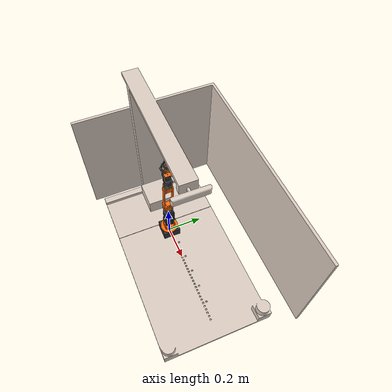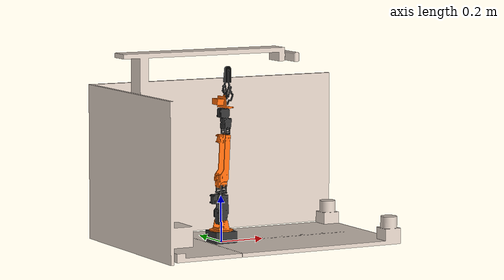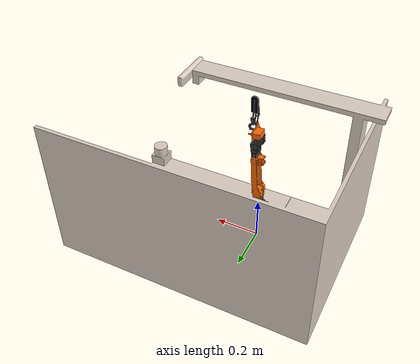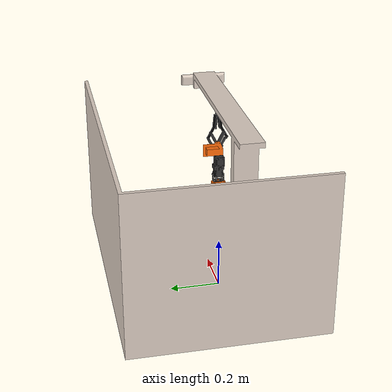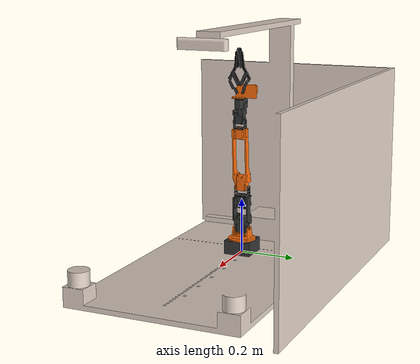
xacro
<?xml version="1.0"?>

<!-- Robot Description format of CLAM arm
Dave Coleman - davetcoleman@gmail.com
10/23/13

Documentation:

URDF
http://www.ros.org/wiki/urdf/XML

XARCO - Macro Language
http://www.ros.org/wiki/xacro

-->
<robot name="clam" xmlns:xacro="http://www.ros.org/wiki/xacro">

  <!-- Include materials -->
  <xacro:include filename="$(find clam_description)/urdf/materials.urdf.xacro" />

  <!-- Constants -->
  <property name="M_SCALE" value="0.001 0.001 0.001"/>
  <property name="M_PI" value="3.14159"/>

  <!-- TABLETOP LINK -->
  <joint name="tabletop_joint" type="fixed">
    <origin xyz="0 0 0" rpy="0 0 0" />
    <parent link="base_link"/>
    <child link="tabletop_link"/>
  </joint>

  <link name="tabletop_link">

    <inertial>
      <origin xyz=" 0 0 -0.017"/>
      <mass value="100.0" />
      <inertia  ixx="1.0" ixy="0.0"  ixz="0.0"  iyy="100.0"  iyz="0.0"  izz="1.0" />
    </inertial>

    <visual>
      <origin xyz=" 0 0 -0.017"  rpy="${.5*M_PI} 0 ${.5*M_PI}"/>
      <geometry>
        <mesh filename="package://clam_description/stl/tabletop_link.STL" scale="${M_SCALE}" />
      </geometry>
      <material name="Brown" />
    </visual>

    <collision>
      <origin xyz=" 0 0 -0.017"  rpy="${.5*M_PI} 0 ${.5*M_PI}"/>
      <geometry>
        <mesh filename="package://clam_description/stl/tabletop_link_simple.STL" scale="${M_SCALE}" />
      </geometry>
      </collision>>

  </link>

  <gazebo reference="tabletop_link">
    <material>Gazebo/White</material>
  </gazebo>

  <!-- BASE LINK -->
  <link name="base_link">

    <visual>
      <origin xyz="0 0 0" rpy="${M_PI/2} 0 0" /> <!-- rotate PI/2 -->
      <geometry>
        <mesh filename="package://clam_description/stl/base_link.STL" scale="${M_SCALE}" />
      </geometry>
      <material name="Grey" />
    </visual>

    <collision>
      <origin xyz="0 0 0" rpy="${M_PI/2} 0 0" /> <!-- rotate PI/2 -->
      <geometry>
        <mesh filename="package://clam_description/stl/base_link_simple.STL" scale="${M_SCALE}" />
      </geometry>
      </collision>>

  </link>

  <gazebo reference="base_link">
    <material>Gazebo/Grey</material>
  </gazebo>

  <joint name="shoulder_pan_joint" type="revolute">
    <parent link="base_link"/>
    <child link="shoulder_pan_link"/>
    <origin xyz="0 0 0.05" rpy="0 ${M_PI/2} ${M_PI*0}" />
    <axis xyz="-1 0 0" />
    <limit effort="300" velocity="1" lower="-2.61799387799" upper="1.98394848567"/>
    <dynamics damping="50" friction="1"/>
  </joint>

  <!-- SHOULDER PAN LINK -->
  <link name="shoulder_pan_link" >

    <inertial>
      <origin xyz="0 0 0" />
      <mass value="1.0" />
      <inertia  ixx="1.0" ixy="0.0"  ixz="0.0"  iyy="100.0"  iyz="0.0"  izz="1.0" />
    </inertial>

    <visual>
      <origin xyz="0 0 0" rpy="0 0 ${M_PI/2}" />
      <geometry>
        <mesh filename="package://clam_description/stl/shoulder_pan_link.STL" scale="${M_SCALE}" />
      </geometry>
      <material name="Orange" />
    </visual>

    <collision>
      <origin xyz="0 0 0" rpy="0 0 ${M_PI/2}" />
      <geometry>
        <mesh filename="package://clam_description/stl/shoulder_pan_link_simple.STL" scale="${M_SCALE}" />
      </geometry>
    </collision>
  </link>

  <gazebo reference="shoulder_pan_link">
    <material>Gazebo/Orange</material>
  </gazebo>

  <joint name="shoulder_pitch_joint" type="revolute">
    <parent link="shoulder_pan_link"/>
    <child link="shoulder_pitch_link"/>
    <origin xyz="-0.041 0.0021 0.0" rpy="-${M_PI/2} 0 ${M_PI/2}" />
    <axis xyz="1 0 0" />
    <limit effort="300" velocity="1" lower="-1.19962513147" upper="1.89994105047" />
    <dynamics damping="50" friction="1"/>
  </joint>

  <!-- SHOULDER PITCH LINK -->
  <link name="shoulder_pitch_link" >

    <inertial>
      <origin xyz="-0.002 0 -0.000"  />
      <mass value="1.0" />
      <inertia  ixx="1.0" ixy="0.0"  ixz="0.0"  iyy="100.0"  iyz="0.0"  izz="1.0" />
    </inertial>

    <visual>
      <origin xyz="-0.002 0 -0.000" rpy="${M_PI/2} ${M_PI} ${M_PI/2}" />
      <geometry>
        <mesh filename="package://clam_description/stl/shoulder_pitch_link.STL" scale="${M_SCALE}" />
      </geometry>
      <material name="Grey" />
    </visual>

    <collision>
      <origin xyz="-0.002 0 -0.000" rpy="${M_PI/2} ${M_PI} ${M_PI/2}" />
      <geometry>
        <mesh filename="package://clam_description/stl/shoulder_pitch_link_simple.STL" scale="${M_SCALE}" />
      </geometry>
    </collision>

  </link>

  <gazebo reference="shoulder_pitch_link">
    <material>Gazebo/Grey</material>
  </gazebo>

  <joint name="elbow_roll_joint" type="revolute">
    <parent link="shoulder_pitch_link"/>
    <child link="elbow_roll_link"/>
    <origin xyz="-0.002 0 0.1206" rpy="${M_PI} ${M_PI/2} 0" />
    <axis xyz="-1 0 0" />
    <limit effort="300" velocity="1" lower="-2.61799387799" upper="0.705631162427" />
    <dynamics damping="50" friction="1"/>
  </joint>

  <!-- ELBOW ROLL LINK -->
  <link name="elbow_roll_link" >

    <inertial>
      <origin xyz="-0.035 0.0 0.0"  />
      <mass value="1.0" />
      <inertia  ixx="1.0" ixy="0.0"  ixz="0.0"  iyy="100.0"  iyz="0.0"  izz="1.0" />
    </inertial>

    <visual>
      <origin xyz="-0.035 0.0 0.0" rpy="${M_PI} ${M_PI/2} ${M_PI/2}" />
      <geometry>
        <mesh filename="package://clam_description/stl/elbow_roll_link.STL" scale="${M_SCALE}" />
      </geometry>
      <material name="Black" />
    </visual>

    <collision>
      <origin xyz="-0.035 0.0 0.0" rpy="${M_PI} ${M_PI/2} ${M_PI/2}" />
      <geometry>
        <mesh filename="package://clam_description/stl/elbow_roll_link_simple.STL" scale="${M_SCALE}" />
      </geometry>
    </collision>

  </link>

  <gazebo reference="elbow_roll_link">
    <material>Gazebo/Black</material>
  </gazebo>

  <joint name="elbow_pitch_joint" type="revolute">
    <parent link="elbow_roll_link"/>
    <child link="elbow_pitch_link"/>
    <origin xyz="-0.035 0 0.0" rpy="0.055 ${M_PI/2} 0" />
    <axis xyz="1 0 0" />
    <limit effort="300" velocity="1" lower="-1.5953400194" upper="1.93281579274" />
    <dynamics damping="50" friction="1"/>
  </joint>

  <!-- ELBOW PITCH LINK -->
  <link name="elbow_pitch_link" >

    <inertial>
      <origin xyz="0.0 0 0"  />
      <mass value="1.0" />
      <inertia  ixx="1.0" ixy="0.0"  ixz="0.0"  iyy="100.0"  iyz="0.0"  izz="1.0" />
    </inertial>

    <visual>
      <origin xyz="0.0 0 0" rpy="${M_PI/2} 0 ${M_PI/2+M_PI}" />
      <geometry>
        <mesh filename="package://clam_description/stl/elbow_pitch_link.STL" scale="${M_SCALE}" />
      </geometry>
      <material name="Orange" />
    </visual>

    <collision>
      <origin xyz="0.0 0 0" rpy="${M_PI/2} 0 ${M_PI/2+M_PI}" />
      <geometry>
        <mesh filename="package://clam_description/stl/elbow_pitch_link_simple.STL" scale="${M_SCALE}" />
      </geometry>
    </collision>

  </link>

  <gazebo reference="elbow_pitch_link">
    <material>Gazebo/Orange</material>
  </gazebo>

  <joint name="wrist_roll_joint" type="revolute">
    <parent link="elbow_pitch_link"/>
    <child link="wrist_roll_link"/>
    <origin xyz="0.0 0.0081 -.248" rpy="0 ${M_PI/2} ${M_PI}" />
    <axis xyz="1 0 0" />
    <limit effort="300" velocity="1" lower="-2.61799387799" upper="2.6128806087" />
    <dynamics damping="50" friction="1"/>
  </joint>

  <!-- WRIST ROLL LINK -->
  <link name="wrist_roll_link" >

    <inertial>
      <origin xyz="0 0 0"  />
      <mass value="1.0" />
      <inertia  ixx="1.0" ixy="0.0"  ixz="0.0"  iyy="100.0"  iyz="0.0"  izz="1.0" />
    </inertial>

    <visual>
      <origin xyz="0 0 0" rpy="0 ${M_PI/2} ${M_PI/2}" />
      <geometry>
        <mesh filename="package://clam_description/stl/wrist_roll_link.STL" scale="${M_SCALE}" />
      </geometry>
      <material name="Black" />
    </visual>

    <collision>
      <origin xyz="0 0 0" rpy="0 ${M_PI/2} ${M_PI/2}" />
      <geometry>
        <mesh filename="package://clam_description/stl/wrist_roll_link_simple.STL" scale="${M_SCALE}" />
      </geometry>
    </collision>

  </link>

  <gazebo reference="wrist_roll_link">
    <material>Gazebo/Black</material>
  </gazebo>

  <joint name="wrist_pitch_joint" type="revolute">
    <parent link="wrist_roll_link"/>
    <child link="wrist_pitch_link"/>
    <origin xyz="0.0 0.0 0.0001" rpy="0 ${M_PI/2} 0" />
    <axis xyz="1 0 0" />
    <limit effort="300" velocity="1" lower="-1.5953400194" upper="1.98394848567" />
    <dynamics damping="50" friction="1"/>
  </joint>

  <!-- WRIST PITCH LINK -->
  <link name="wrist_pitch_link">

    <inertial>
      <origin xyz="0 0 0"  />
      <mass value="1.0" />
      <inertia  ixx="1.0" ixy="0.0"  ixz="0.0"  iyy="100.0"  iyz="0.0"  izz="1.0" />
    </inertial>

    <visual>
      <origin xyz="0 0 0" rpy="${M_PI} -${M_PI/2} 0" />
      <geometry>
        <mesh filename="package://clam_description/stl/wrist_pitch_link.STL" scale="${M_SCALE}" />
      </geometry>
      <material name="Grey" />
    </visual>

    <collision>
      <origin xyz="0 0 0" rpy="${M_PI} -${M_PI/2} 0" />
      <geometry>
        <mesh filename="package://clam_description/stl/wrist_pitch_link_simple.STL" scale="${M_SCALE}" />
      </geometry>
    </collision>

  </link>

  <gazebo reference="wrist_pitch_link">
    <material>Gazebo/Grey</material>
  </gazebo>

  <joint name="gripper_roll_joint" type="revolute">
    <parent link="wrist_pitch_link"/>
    <child link="gripper_roll_link"/>
    <origin xyz="0 0 0.080" rpy="${1.5*M_PI} -${.5*M_PI} 0" />
    <axis xyz="1 0 0" />
    <limit effort="300" velocity="1" lower="-2.61799387799" upper="2.6128806087" />
    <dynamics damping="50" friction="1"/>
  </joint>

  <!-- GRIPPER ROLL LINK -->
  <link name="gripper_roll_link">

    <inertial>
      <origin xyz="0 0 0" />
      <mass value="1.0" />
      <inertia  ixx="1.0" ixy="0.0"  ixz="0.0"  iyy="100.0"  iyz="0.0"  izz="1.0" />
    </inertial>

    <visual>
      <origin xyz="0 0 0" rpy="0 0 0" />
      <geometry>
        <mesh filename="package://clam_description/stl/gripper_roll_link.STL" scale="${M_SCALE}" />
      </geometry>
      <material name="Orange" />
    </visual>

    <collision>
      <origin xyz="0 0 0" rpy="0 0 0" />
      <geometry>
        <mesh filename="package://clam_description/stl/gripper_roll_link.STL" scale="${M_SCALE}" />
      </geometry>
    </collision>

  </link>

  <gazebo reference="gripper_roll_link">
    <material>Gazebo/Orange</material>
  </gazebo>

  <joint name="gripper_finger_joint" type="revolute">
    <parent link="gripper_roll_link"/>
    <child link="gripper_finger_link"/>
    <origin xyz="0.026 .017 0" rpy="${1.04*M_PI} ${M_PI/2} ${34.58*M_PI/180}" />
    <axis xyz="1 0 0" />
    <limit effort="300" velocity="1" lower="${-53*M_PI/180}" upper="${0*M_PI/180}"/>
    <dynamics damping="50" friction="1"/>
  </joint>

  <!-- LEFT GRIPPER AFT LINK -->
  <link name="gripper_finger_link">

    <inertial>
      <origin xyz="0 0 0"  />
      <mass value="1.0" />
      <inertia  ixx="1.0" ixy="0.0"  ixz="0.0"  iyy="100.0"  iyz="0.0"  izz="1.0" />
    </inertial>

    <visual>
      <origin xyz="0 0 0" rpy="0 0 ${M_PI}" />
      <geometry>
        <mesh filename="package://clam_description/stl/l_gripper_aft_link.STL" scale="1 1 1" />
      </geometry>
      <material name="Grey" />
    </visual>

  </link>

  <gazebo reference="l_gripper_aft_link">
    <material>Gazebo/Grey</material>
  </gazebo>

  <joint name="r_gripper_aft_joint" type="revolute">
    <parent link="gripper_roll_link"/>
    <child link="r_gripper_aft_link"/>
    <origin xyz="0.026 -0.011  0" rpy="${1.345*M_PI} ${M_PI/2} ${34.58*M_PI/180}" />
    <axis xyz="1 0 0" />
    <limit effort="300" velocity="1" lower="-3.14" upper="3.14" />
    <mimic joint="gripper_finger_joint" multiplier="-1.0" offset="0.0" />
    <dynamics damping="50" friction="1"/>
  </joint>

  <!-- RIGHT GRIPPER AFT LINK -->
  <link name="r_gripper_aft_link">

    <inertial>
      <origin xyz="0 0 0"  />
      <mass value="1.0" />
      <inertia  ixx="1.0" ixy="0.0"  ixz="0.0"  iyy="100.0"  iyz="0.0"  izz="1.0" />
    </inertial>

    <visual>
      <origin xyz="0 0 0" rpy="0 0 ${M_PI}" />
      <geometry>
        <mesh filename="package://clam_description/stl/r_gripper_aft_link.STL" scale="1 1 1" />
      </geometry>
      <material name="Grey" />
    </visual>

  </link>

  <gazebo reference="r_gripper_aft_link">
    <material>Gazebo/Grey</material>
  </gazebo>

  <joint name="l_gripper_fwd_joint" type="revolute">
    <parent link="gripper_roll_link"/>
    <child link="l_gripper_fwd_link"/>
    <origin xyz="0.05 0.008 0.007" rpy="${M_PI*(1+.04)} ${M_PI/2} ${214.58*M_PI/180}" />
    <axis xyz="1 0 0" />
    <limit effort="300" velocity="1" lower="0" upper="1.57" />
    <mimic joint="gripper_finger_joint" multiplier="1.0" offset="0.0" />
    <dynamics damping="50" friction="1"/>
  </joint>

  <!-- LEFT GRIPPER FWD LINK -->
  <link name="l_gripper_fwd_link">

    <inertial>
      <origin xyz="0 0 0"  />
      <mass value="1.0" />
      <inertia  ixx="1.0" ixy="0.0"  ixz="0.0"  iyy="100.0"  iyz="0.0"  izz="1.0" />
    </inertial>

    <visual>
      <origin xyz="0 0 0" rpy="0 0 ${M_PI}" />
      <geometry>
        <mesh filename="package://clam_description/stl/l_gripper_fwd_link.STL" scale="1 1 1" />
      </geometry>
      <material name="Grey" />
    </visual>

  </link>

  <gazebo reference="l_gripper_fwd_link">
    <material>Gazebo/Grey</material>
  </gazebo>

  <joint name="r_gripper_fwd_joint" type="revolute">
    <parent link="gripper_roll_link"/>
    <child link="r_gripper_fwd_link"/>
    <origin xyz="0.05 -0.0014 0.007" rpy="${M_PI*(1-.04)} ${M_PI/2} ${145.42*M_PI/180}" />
    <axis xyz="1 0 0" />
    <limit effort="300" velocity="1" lower="-1.57" upper="0" />
    <mimic joint="gripper_finger_joint" multiplier="-1.0" offset="0.0" />
    <dynamics damping="50" friction="1"/>
  </joint>

  <!-- RIGHT GRIPPER FWD LINK -->
  <link name="r_gripper_fwd_link">

    <inertial>
      <origin xyz="0 0 0"  />
      <mass value="1.0" />
      <inertia  ixx="1.0" ixy="0.0"  ixz="0.0"  iyy="100.0"  iyz="0.0"  izz="1.0" />
    </inertial>

    <visual>
      <origin xyz="0 0 0" rpy="0 0 ${M_PI}" />
      <geometry>
        <mesh filename="package://clam_description/stl/r_gripper_fwd_link.STL" scale="1 1 1" />
      </geometry>
      <material name="Grey" />
    </visual>

  </link>

  <gazebo reference="r_gripper_fwd_link">
    <material>Gazebo/Grey</material>
  </gazebo>

  <joint name="gripper_finger_pincher_joint" type="revolute">
    <parent link="gripper_finger_link"/>
    <child link="l_gripper_pincher_link"/>
    <origin xyz="-0.0032 0 -0.0508" rpy="${203.27*M_PI/180-.3150*M_PI} 0 0" />
    <axis xyz="1 0 0" />
    <limit effort="300" velocity="1" lower="-1.57" upper="1.57" />
    <mimic joint="gripper_finger_joint" multiplier="-1.0" offset="0.0" />
    <dynamics damping="50" friction="1"/>
  </joint>

  <!-- LEFT GRIPPER PINCHER -->
  <link name="l_gripper_pincher_link">

    <inertial>
      <origin xyz="0 0 0"  />
      <mass value="1.0" />
      <inertia  ixx="1.0" ixy="0.0"  ixz="0.0"  iyy="100.0"  iyz="0.0"  izz="1.0" />
    </inertial>

    <visual>
      <origin xyz="0 0 0" rpy="0 0 ${M_PI}" />
      <geometry>
        <mesh filename="package://clam_description/stl/l_gripper_pincher.STL" scale="1 1 1" />
      </geometry>
      <material name="Black" />
    </visual>

  </link>

  <gazebo reference="l_gripper_pincher_link">
    <material>Gazebo/Black</material>
  </gazebo>

  <joint name="r_gripper_aft_pincher_joint" type="revolute">
    <parent link="r_gripper_aft_link"/>
    <child link="r_gripper_pincher_link"/>
    <origin xyz="0 0 -0.0508" rpy="${23.27*M_PI/180-.3150*M_PI} ${M_PI} 0" />
    <axis xyz="1 0 0" />

    <limit effort="300" velocity="1" lower="0" upper="1.57" />
    <mimic joint="gripper_finger_joint" multiplier="-1.0" offset="0.0" />
    <dynamics damping="50" friction="1"/>
  </joint>

  <!-- RIGHT GRIPPER PINCHER -->
  <link name="r_gripper_pincher_link">

    <inertial>
      <origin xyz="0 0 0" />
      <mass value="1.0" />
      <inertia  ixx="1.0" ixy="0.0"  ixz="0.0"  iyy="100.0"  iyz="0.0"  izz="1.0" />
    </inertial>

    <visual>
      <origin xyz="0 0 0" rpy="0 0 ${M_PI}" />
      <geometry>
        <mesh filename="package://clam_description/stl/r_gripper_pincher.STL" scale="1 1 1" />
      </geometry>
      <material name="Black" />
    </visual>

  </link>

  <gazebo reference="r_gripper_pincher_link">
    <material>Gazebo/Black</material>
  </gazebo>

  <!-- Transmissions for ROS Control -->
  <transmission name="tran1">
    <type>transmission_interface/SimpleTransmission</type>
    <joint name="shoulder_pan_joint">
      <hardwareInterface>EffortJointInterface</hardwareInterface>
    </joint>
    <actuator name="motor1">
      <hardwareInterface>EffortJointInterface</hardwareInterface>
      <mechanicalReduction>1</mechanicalReduction>
    </actuator>
  </transmission>

  <transmission name="tran1">
    <type>transmission_interface/SimpleTransmission</type>
    <joint name="shoulder_pitch_joint">
      <hardwareInterface>EffortJointInterface</hardwareInterface>
    </joint>
    <actuator name="motor1">
      <hardwareInterface>EffortJointInterface</hardwareInterface>
      <mechanicalReduction>1</mechanicalReduction>
    </actuator>
  </transmission>

  <transmission name="tran1">
    <type>transmission_interface/SimpleTransmission</type>
    <joint name="elbow_roll_joint">
      <hardwareInterface>EffortJointInterface</hardwareInterface>
    </joint>
    <actuator name="motor1">
      <hardwareInterface>EffortJointInterface</hardwareInterface>
      <mechanicalReduction>1</mechanicalReduction>
    </actuator>
  </transmission>

  <transmission name="tran1">
    <type>transmission_interface/SimpleTransmission</type>
    <joint name="elbow_pitch_joint">
      <hardwareInterface>EffortJointInterface</hardwareInterface>
    </joint>
    <actuator name="motor1">
      <hardwareInterface>EffortJointInterface</hardwareInterface>
      <mechanicalReduction>1</mechanicalReduction>
    </actuator>
  </transmission>

  <transmission name="tran1">
    <type>transmission_interface/SimpleTransmission</type>
    <joint name="wrist_roll_joint">
      <hardwareInterface>EffortJointInterface</hardwareInterface>
    </joint>
    <actuator name="motor1">
      <hardwareInterface>EffortJointInterface</hardwareInterface>
      <mechanicalReduction>1</mechanicalReduction>
    </actuator>
  </transmission>

  <transmission name="tran1">
    <type>transmission_interface/SimpleTransmission</type>
    <joint name="wrist_pitch_joint">
      <hardwareInterface>EffortJointInterface</hardwareInterface>
    </joint>
    <actuator name="motor1">
      <hardwareInterface>EffortJointInterface</hardwareInterface>
      <mechanicalReduction>1</mechanicalReduction>
    </actuator>
  </transmission>

  <transmission name="tran1">
    <type>transmission_interface/SimpleTransmission</type>
    <joint name="gripper_roll_joint">
      <hardwareInterface>EffortJointInterface</hardwareInterface>
    </joint>
    <actuator name="motor1">
      <hardwareInterface>EffortJointInterface</hardwareInterface>
      <mechanicalReduction>1</mechanicalReduction>
    </actuator>
  </transmission>

  <transmission name="tran1">
    <type>transmission_interface/SimpleTransmission</type>
    <joint name="gripper_finger_joint">
      <hardwareInterface>EffortJointInterface</hardwareInterface>
    </joint>
    <actuator name="motor1">
      <hardwareInterface>EffortJointInterface</hardwareInterface>
      <mechanicalReduction>1</mechanicalReduction>
    </actuator>
  </transmission>

  <!-- ros_control plugin -->
  <gazebo>
    <plugin name="gazebo_ros_control" filename="libgazebo_ros_control.so">
      <robotNamespace>/clam</robotNamespace>
    </plugin>
  </gazebo>

  <!-- FAKE CAMERA CALIBRATION POINT AT GRIPPER TIP -->

</robot>

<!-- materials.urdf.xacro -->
<robot>

    <material name="Black">
        <color rgba="0.0 0.0 0.0 1.0"/>
    </material>

    <material name="Blue">
        <color rgba="0.0 0.0 0.8 1.0"/>
    </material>

    <material name="Green">
        <color rgba="0.0 0.8 0.0 1.0"/>
    </material>

    <material name="Grey">
        <color rgba="0.2 0.2 0.2 1.0"/>
    </material>

    <material name="Orange">
        <color rgba="${255/255} ${108/255} ${10/255} 1.0"/>
    </material>

    <material name="Brown">
        <color rgba="${222/255} ${207/255} ${195/255} 1.0"/>
    </material>

    <material name="Red">
        <color rgba="0.8 0.0 0.0 1.0"/>
    </material>

    <material name="White">
        <color rgba="1.0 1.0 1.0 1.0"/>
    </material>

</robot>
